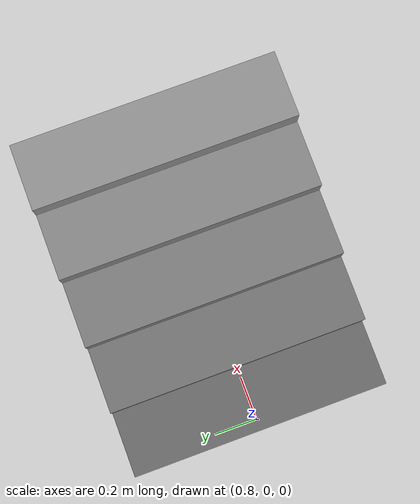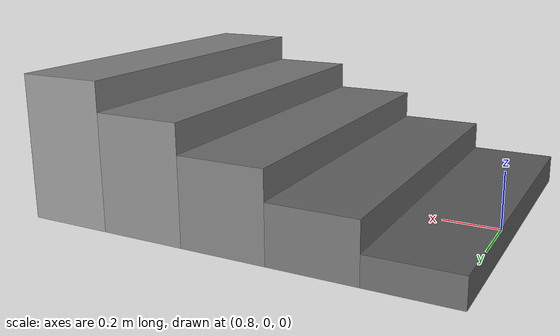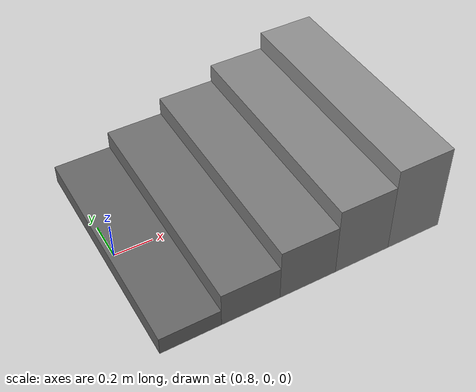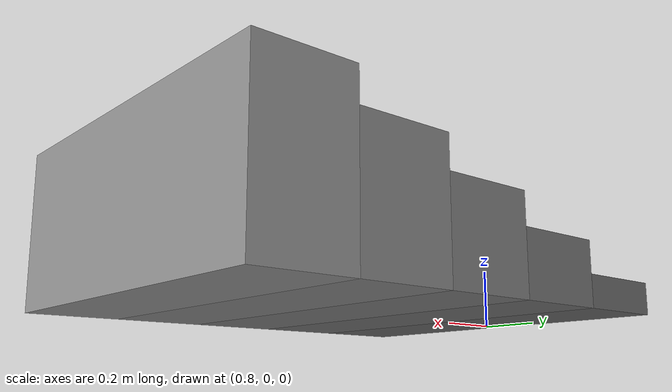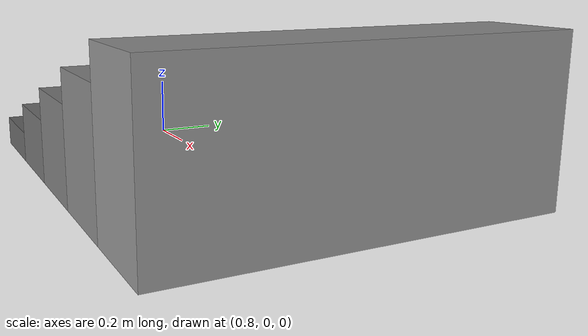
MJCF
<?xml version="1.0" ?>
<!-- |    This document was autogenerated by xacro from ./stairs.xml.xacro             | -->
<!-- |    EDITING THIS FILE BY HAND IS NOT RECOMMENDED                                 | -->
<mujoco model="stairs">
  <worldbody>
    <body name="stairs" pos="0.75 0.0 0.0" quat="1.0 0 0 0.0">
      <geom friction="0.8 0.1 0.001" name="stairs_step_1" pos="0.15 0 0.05" priority="1" rgba="0.4 0.4 0.4 1" size="0.15 0.6 0.05" type="box"/>
      <geom friction="0.8 0.1 0.001" name="stairs_step_2" pos="0.44999999999999996 0 0.1" priority="1" rgba="0.44 0.44 0.44 1" size="0.15 0.6 0.1" type="box"/>
      <geom friction="0.8 0.1 0.001" name="stairs_step_3" pos="0.75 0 0.15000000000000002" priority="1" rgba="0.48000000000000004 0.48000000000000004 0.48000000000000004 1" size="0.15 0.6 0.15000000000000002" type="box"/>
      <geom friction="0.8 0.1 0.001" name="stairs_step_4" pos="1.0499999999999998 0 0.2" priority="1" rgba="0.52 0.52 0.52 1" size="0.15 0.6 0.2" type="box"/>
      <geom friction="0.8 0.1 0.001" name="stairs_step_5" pos="1.3499999999999999 0 0.25" priority="1" rgba="0.56 0.56 0.56 1" size="0.15 0.6 0.25" type="box"/>
    </body>
  </worldbody>
</mujoco>
